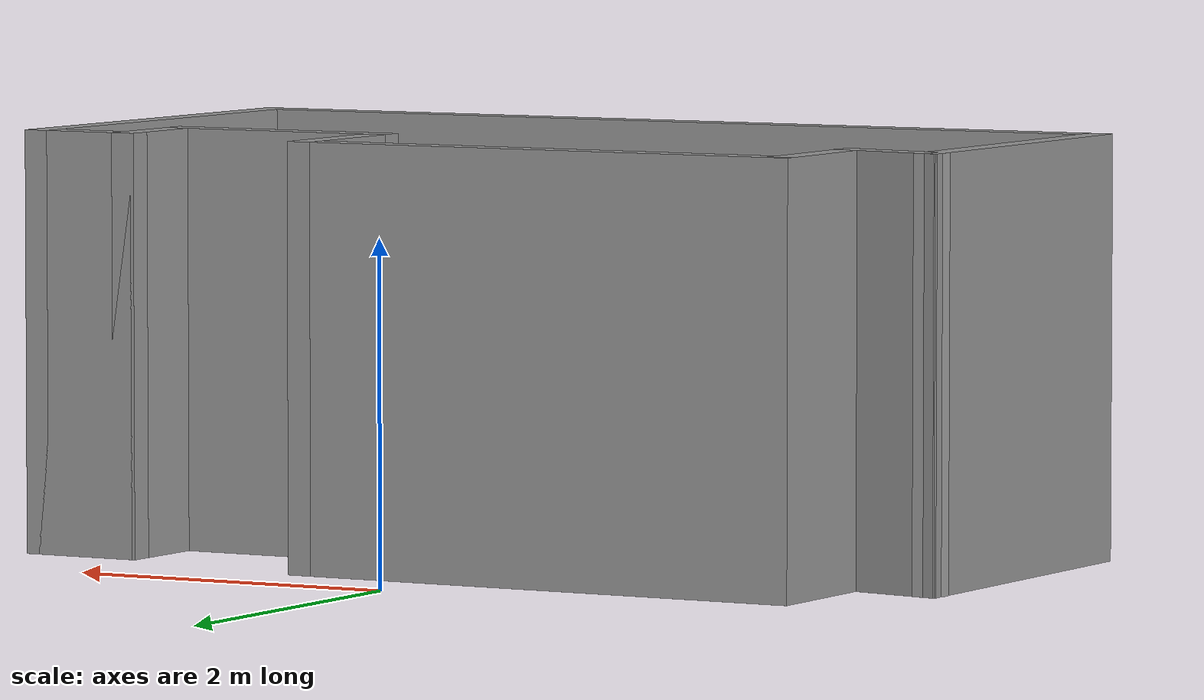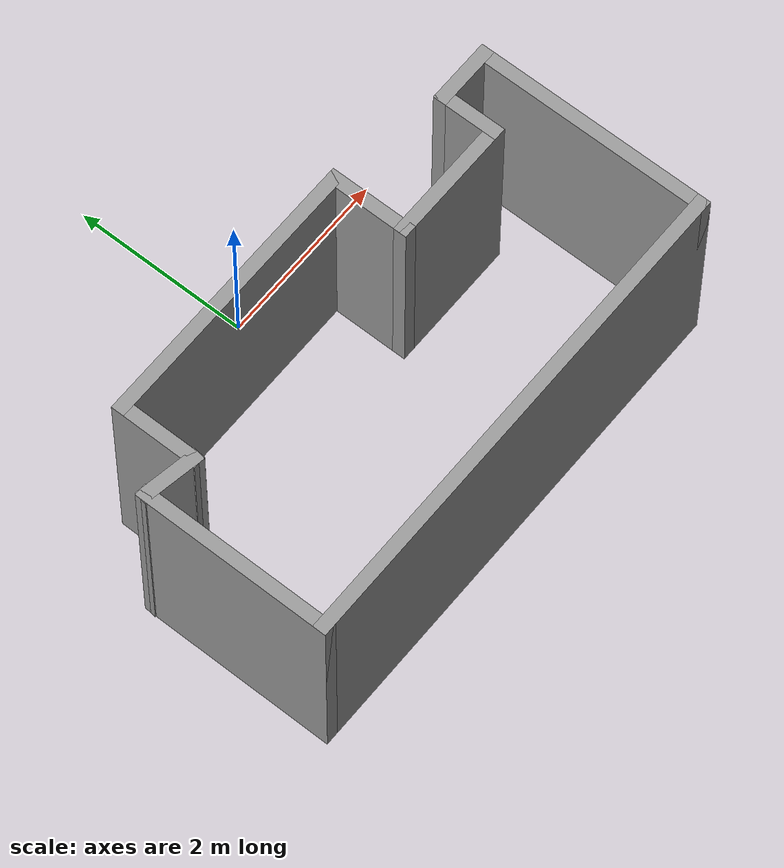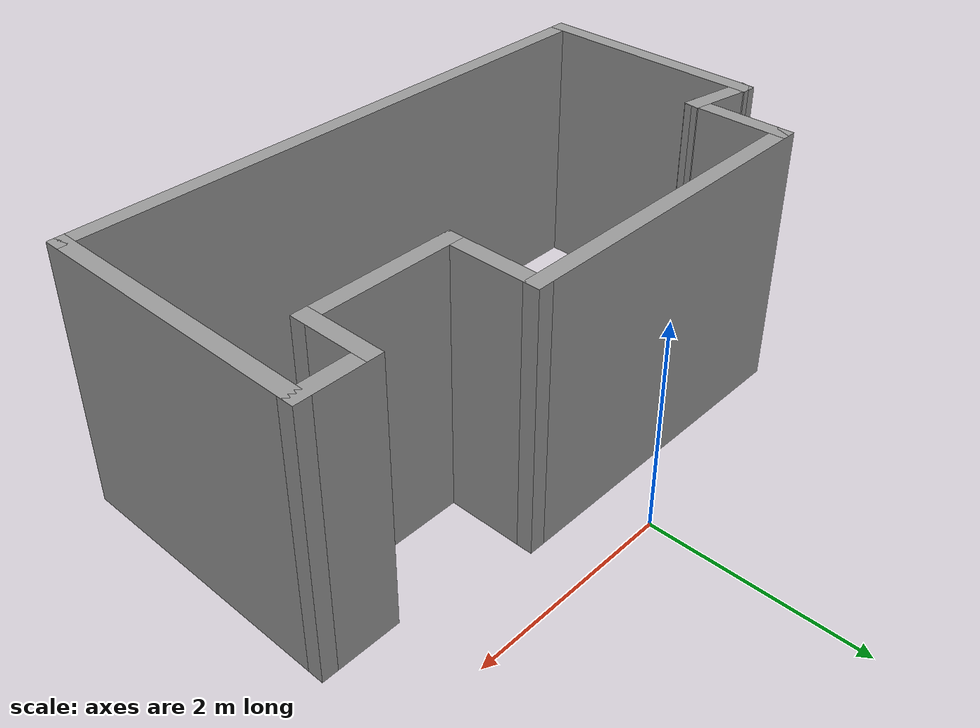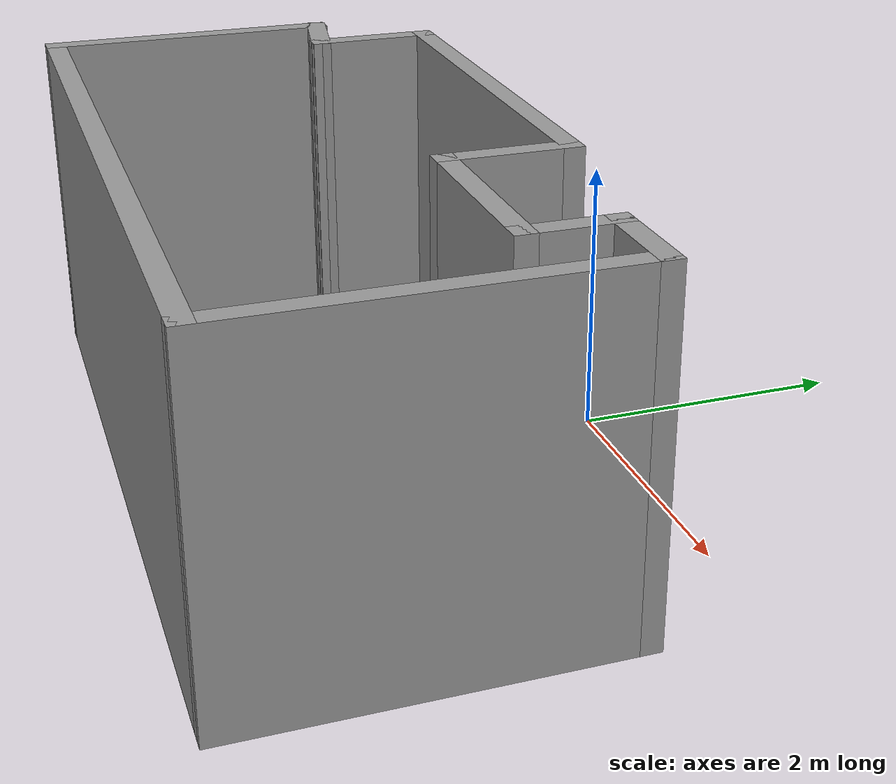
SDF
<?xml version='1.0'?>
<sdf version='1.6'>
  <model name='closed_room'>
    <pose frame=''>-0.026103 -1.985 0 0 -0 0</pose>
    <link name='Wall_0'>
      <collision name='Wall_0_Collision'>
        <geometry>
          <box>
            <size>2.25 0.15 2.5</size>
          </box>
        </geometry>
        <pose frame=''>0 0 1.25 0 -0 0</pose>
      </collision>
      <visual name='Wall_0_Visual'>
        <pose frame=''>0 0 1.25 0 -0 0</pose>
        <geometry>
          <box>
            <size>2.25 0.15 2.5</size>
          </box>
        </geometry>
        <material>
          <script>
            <uri>file://media/materials/scripts/gazebo.material</uri>
            <name>Gazebo/Grey</name>
          </script>
          <ambient>1 1 1 1</ambient>
        </material>
        <meta>
          <layer>0</layer>
        </meta>
      </visual>
      <pose frame=''>-2.7939 -0.375 0 0 0 -1.5708</pose>
    </link>
    <link name='Wall_1'>
      <collision name='Wall_1_Collision'>
        <geometry>
          <box>
            <size>5.75 0.15 2.5</size>
          </box>
        </geometry>
        <pose frame=''>0 0 1.25 0 -0 0</pose>
      </collision>
      <visual name='Wall_1_Visual'>
        <pose frame=''>0 0 1.25 0 -0 0</pose>
        <geometry>
          <box>
            <size>5.75 0.15 2.5</size>
          </box>
        </geometry>
        <material>
          <script>
            <uri>file://media/materials/scripts/gazebo.material</uri>
            <name>Gazebo/Grey</name>
          </script>
          <ambient>1 1 1 1</ambient>
        </material>
        <meta>
          <layer>0</layer>
        </meta>
      </visual>
      <pose frame=''>0.006103 -1.425 0 0 -0 0</pose>
    </link>
    <link name='Wall_2'>
      <collision name='Wall_2_Collision'>
        <geometry>
          <box>
            <size>2.75 0.15 2.5</size>
          </box>
        </geometry>
        <pose frame=''>0 0 1.25 0 -0 0</pose>
      </collision>
      <visual name='Wall_2_Visual'>
        <pose frame=''>0 0 1.25 0 -0 0</pose>
        <geometry>
          <box>
            <size>2.75 0.15 2.5</size>
          </box>
        </geometry>
        <material>
          <script>
            <uri>file://media/materials/scripts/gazebo.material</uri>
            <name>Gazebo/Grey</name>
          </script>
          <ambient>1 1 1 1</ambient>
        </material>
        <meta>
          <layer>0</layer>
        </meta>
      </visual>
      <pose frame=''>2.8061 -0.125 0 0 -0 1.5708</pose>
    </link>
    <link name='Wall_3'>
      <collision name='Wall_3_Collision'>
        <geometry>
          <box>
            <size>0.75 0.15 2.5</size>
          </box>
        </geometry>
        <pose frame=''>0 0 1.25 0 -0 0</pose>
      </collision>
      <visual name='Wall_3_Visual'>
        <pose frame=''>0 0 1.25 0 -0 0</pose>
        <geometry>
          <box>
            <size>0.75 0.15 2.5</size>
          </box>
        </geometry>
        <material>
          <script>
            <uri>file://media/materials/scripts/gazebo.material</uri>
            <name>Gazebo/Grey</name>
          </script>
          <ambient>1 1 1 1</ambient>
        </material>
        <meta>
          <layer>0</layer>
        </meta>
      </visual>
      <pose frame=''>2.5061 1.175 0 0 -0 3.14159</pose>
    </link>
    <link name='Wall_4'>
      <collision name='Wall_4_Collision'>
        <geometry>
          <box>
            <size>0.75 0.15 2.5</size>
          </box>
        </geometry>
        <pose frame=''>0 0 1.25 0 -0 0</pose>
      </collision>
      <visual name='Wall_4_Visual'>
        <pose frame=''>0 0 1.25 0 -0 0</pose>
        <geometry>
          <box>
            <size>0.75 0.15 2.5</size>
          </box>
        </geometry>
        <material>
          <script>
            <uri>file://media/materials/scripts/gazebo.material</uri>
            <name>Gazebo/Grey</name>
          </script>
          <ambient>1 1 1 1</ambient>
        </material>
        <meta>
          <layer>0</layer>
        </meta>
      </visual>
      <pose frame=''>2.2061 0.875 0 0 0 -1.5708</pose>
    </link>
    <link name='Wall_5'>
      <collision name='Wall_5_Collision'>
        <geometry>
          <box>
            <size>1.5 0.15 2.5</size>
          </box>
        </geometry>
        <pose frame=''>0 0 1.25 0 -0 0</pose>
      </collision>
      <visual name='Wall_5_Visual'>
        <pose frame=''>0 0 1.25 0 -0 0</pose>
        <geometry>
          <box>
            <size>1.5 0.15 2.5</size>
          </box>
        </geometry>
        <material>
          <script>
            <uri>file://media/materials/scripts/gazebo.material</uri>
            <name>Gazebo/Grey</name>
          </script>
          <ambient>1 1 1 1</ambient>
        </material>
        <meta>
          <layer>0</layer>
        </meta>
      </visual>
      <pose frame=''>1.5311 0.575 0 0 -0 3.14159</pose>
    </link>
    <link name='Wall_6'>
      <collision name='Wall_6_Collision'>
        <geometry>
          <box>
            <size>1 0.15 2.5</size>
          </box>
        </geometry>
        <pose frame=''>0 0 1.25 0 -0 0</pose>
      </collision>
      <visual name='Wall_6_Visual'>
        <pose frame=''>0 0 1.25 0 -0 0</pose>
        <geometry>
          <box>
            <size>1 0.15 2.5</size>
          </box>
        </geometry>
        <material>
          <script>
            <uri>file://media/materials/scripts/gazebo.material</uri>
            <name>Gazebo/Grey</name>
          </script>
          <ambient>1 1 1 1</ambient>
        </material>
        <meta>
          <layer>0</layer>
        </meta>
      </visual>
      <pose frame=''>0.856103 1 0 0 -0 1.5708</pose>
    </link>
    <link name='Wall_7'>
      <collision name='Wall_7_Collision'>
        <geometry>
          <box>
            <size>3.25 0.15 2.5</size>
          </box>
        </geometry>
        <pose frame=''>0 0 1.25 0 -0 0</pose>
      </collision>
      <visual name='Wall_7_Visual'>
        <pose frame=''>0 0 1.25 0 -0 0</pose>
        <geometry>
          <box>
            <size>3.25 0.15 2.5</size>
          </box>
        </geometry>
        <material>
          <script>
            <uri>file://media/materials/scripts/gazebo.material</uri>
            <name>Gazebo/Grey</name>
          </script>
          <ambient>1 1 1 1</ambient>
        </material>
        <meta>
          <layer>0</layer>
        </meta>
      </visual>
      <pose frame=''>-0.693897 1.425 0 0 -0 3.14159</pose>
    </link>
    <link name='Wall_8'>
      <collision name='Wall_8_Collision'>
        <geometry>
          <box>
            <size>1 0.15 2.5</size>
          </box>
        </geometry>
        <pose frame=''>0 0 1.25 0 -0 0</pose>
      </collision>
      <visual name='Wall_8_Visual'>
        <pose frame=''>0 0 1.25 0 -0 0</pose>
        <geometry>
          <box>
            <size>1 0.15 2.5</size>
          </box>
        </geometry>
        <material>
          <script>
            <uri>file://media/materials/scripts/gazebo.material</uri>
            <name>Gazebo/Grey</name>
          </script>
          <ambient>1 1 1 1</ambient>
        </material>
        <meta>
          <layer>0</layer>
        </meta>
      </visual>
      <pose frame=''>-2.2439 1 0 0 0 -1.5708</pose>
    </link>
    <link name='Wall_9'>
      <collision name='Wall_9_Collision'>
        <geometry>
          <box>
            <size>0.709017 0.15 2.5</size>
          </box>
        </geometry>
        <pose frame=''>0 0 1.25 0 -0 0</pose>
      </collision>
      <visual name='Wall_9_Visual'>
        <pose frame=''>0 0 1.25 0 -0 0</pose>
        <geometry>
          <box>
            <size>0.709017 0.15 2.5</size>
          </box>
        </geometry>
        <material>
          <script>
            <uri>file://media/materials/scripts/gazebo.material</uri>
            <name>Gazebo/Grey</name>
          </script>
          <ambient>1 1 1 1</ambient>
        </material>
        <meta>
          <layer>0</layer>
        </meta>
      </visual>
      <pose frame=''>-2.5189 0.625 0 0 -0 2.96174</pose>
    </link>
    <static>1</static>
  </model>
</sdf>
